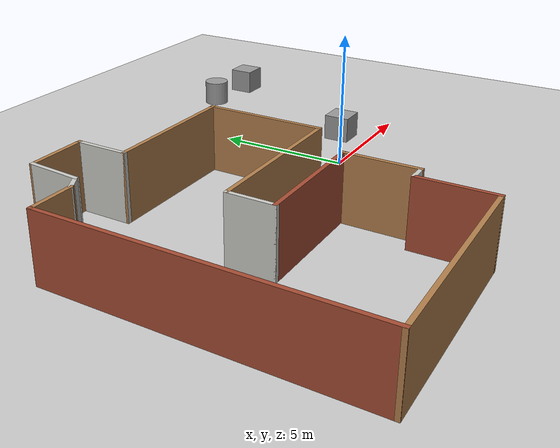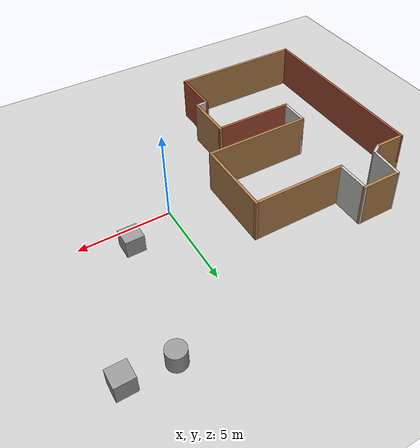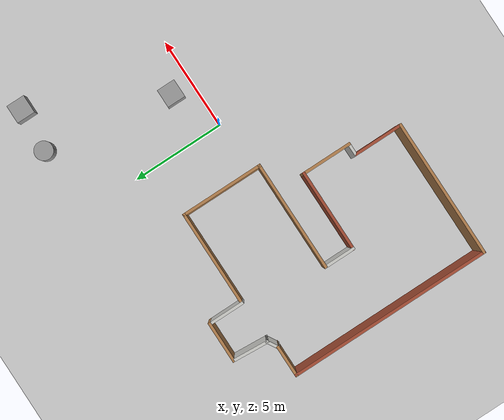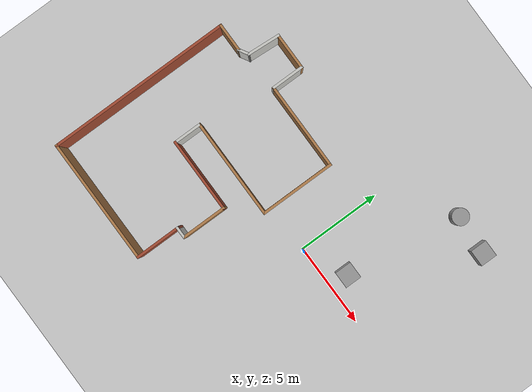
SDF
<sdf version='1.7'>
  <world name='default'>
    <light name='sun' type='directional'>
      <cast_shadows>1</cast_shadows>
      <pose>0 0 10 0 -0 0</pose>
      <diffuse>0.8 0.8 0.8 1</diffuse>
      <specular>0.2 0.2 0.2 1</specular>
      <attenuation>
        <range>1000</range>
        <constant>0.9</constant>
        <linear>0.01</linear>
        <quadratic>0.001</quadratic>
      </attenuation>
      <direction>-0.5 0.1 -0.9</direction>
      <spot>
        <inner_angle>0</inner_angle>
        <outer_angle>0</outer_angle>
        <falloff>0</falloff>
      </spot>
    </light>
    <model name='ground_plane'>
      <static>1</static>
      <link name='link'>
        <collision name='collision'>
          <geometry>
            <plane>
              <normal>0 0 1</normal>
              <size>100 100</size>
            </plane>
          </geometry>
          <surface>
            <friction>
              <ode>
                <mu>100</mu>
                <mu2>50</mu2>
              </ode>
              <torsional>
                <ode/>
              </torsional>
            </friction>
            <contact>
              <ode/>
            </contact>
            <bounce/>
          </surface>
          <max_contacts>10</max_contacts>
        </collision>
        <visual name='visual'>
          <cast_shadows>0</cast_shadows>
          <geometry>
            <plane>
              <normal>0 0 1</normal>
              <size>100 100</size>
            </plane>
          </geometry>
          <material>
            <script>
              <uri>file://media/materials/scripts/gazebo.material</uri>
              <name>Gazebo/Grey</name>
            </script>
          </material>
        </visual>
        <self_collide>0</self_collide>
        <enable_wind>0</enable_wind>
        <kinematic>0</kinematic>
      </link>
    </model>
    <gravity>0 0 -9.8</gravity>
    <magnetic_field>6e-06 2.3e-05 -4.2e-05</magnetic_field>
    <atmosphere type='adiabatic'/>
    <physics type='ode'>
      <max_step_size>0.001</max_step_size>
      <real_time_factor>1</real_time_factor>
      <real_time_update_rate>1000</real_time_update_rate>
    </physics>
    <scene>
      <ambient>0.4 0.4 0.4 1</ambient>
      <background>0.7 0.7 0.7 1</background>
      <shadows>1</shadows>
    </scene>
    <wind/>
    <spherical_coordinates>
      <surface_model>EARTH_WGS84</surface_model>
      <latitude_deg>0</latitude_deg>
      <longitude_deg>0</longitude_deg>
      <elevation>0</elevation>
      <heading_deg>0</heading_deg>
    </spherical_coordinates>
    <model name='Untitled_0'>
      <pose>-6.18772 -0.77899 0 0 -0 0</pose>
      <link name='Wall_10'>
        <collision name='Wall_10_Collision'>
          <geometry>
            <box>
              <size>7.5 0.15 2.5</size>
            </box>
          </geometry>
          <pose>0 0 1.25 0 -0 0</pose>
          <max_contacts>10</max_contacts>
          <surface>
            <contact>
              <ode/>
            </contact>
            <bounce/>
            <friction>
              <torsional>
                <ode/>
              </torsional>
              <ode/>
            </friction>
          </surface>
        </collision>
        <visual name='Wall_10_Visual'>
          <pose>0 0 1.25 0 -0 0</pose>
          <geometry>
            <box>
              <size>7.5 0.15 2.5</size>
            </box>
          </geometry>
          <material>
            <script>
              <uri>file://media/materials/scripts/gazebo.material</uri>
              <name>Gazebo/Wood</name>
            </script>
            <ambient>1 1 1 1</ambient>
          </material>
          <meta>
            <layer>0</layer>
          </meta>
        </visual>
        <pose>-2.43772 -6.50254 0 0 -0 0</pose>
        <self_collide>0</self_collide>
        <enable_wind>0</enable_wind>
        <kinematic>0</kinematic>
      </link>
      <link name='Wall_11'>
        <collision name='Wall_11_Collision'>
          <geometry>
            <box>
              <size>2.75 0.15 2.5</size>
            </box>
          </geometry>
          <pose>0 0 1.25 0 -0 0</pose>
          <max_contacts>10</max_contacts>
          <surface>
            <contact>
              <ode/>
            </contact>
            <bounce/>
            <friction>
              <torsional>
                <ode/>
              </torsional>
              <ode/>
            </friction>
          </surface>
        </collision>
        <visual name='Wall_11_Visual'>
          <pose>0 0 1.25 0 -0 0</pose>
          <geometry>
            <box>
              <size>2.75 0.15 2.5</size>
            </box>
          </geometry>
          <material>
            <script>
              <uri>file://media/materials/scripts/gazebo.material</uri>
              <name>Gazebo/Bricks</name>
            </script>
            <ambient>1 1 1 1</ambient>
          </material>
          <meta>
            <layer>0</layer>
          </meta>
        </visual>
        <pose>1.23728 -5.20254 0 0 -0 1.5708</pose>
        <self_collide>0</self_collide>
        <enable_wind>0</enable_wind>
        <kinematic>0</kinematic>
      </link>
      <link name='Wall_12'>
        <collision name='Wall_12_Collision'>
          <geometry>
            <box>
              <size>0.75 0.15 2.5</size>
            </box>
          </geometry>
          <pose>0 0 1.25 0 -0 0</pose>
          <max_contacts>10</max_contacts>
          <surface>
            <contact>
              <ode/>
            </contact>
            <bounce/>
            <friction>
              <torsional>
                <ode/>
              </torsional>
              <ode/>
            </friction>
          </surface>
        </collision>
        <visual name='Wall_12_Visual'>
          <pose>0 0 1.25 0 -0 0</pose>
          <geometry>
            <box>
              <size>0.75 0.15 2.5</size>
            </box>
          </geometry>
          <material>
            <script>
              <uri>file://media/materials/scripts/gazebo.material</uri>
              <name>Gazebo/CeilingTiled</name>
            </script>
            <ambient>0.921569 0.807843 0.615686 1</ambient>
          </material>
          <meta>
            <layer>0</layer>
          </meta>
        </visual>
        <pose>1.53728 -3.90254 0 0 -0 0</pose>
        <self_collide>0</self_collide>
        <enable_wind>0</enable_wind>
        <kinematic>0</kinematic>
      </link>
      <link name='Wall_13'>
        <collision name='Wall_13_Collision'>
          <geometry>
            <box>
              <size>2.75 0.15 2.5</size>
            </box>
          </geometry>
          <pose>0 0 1.25 0 -0 0</pose>
          <max_contacts>10</max_contacts>
          <surface>
            <contact>
              <ode/>
            </contact>
            <bounce/>
            <friction>
              <torsional>
                <ode/>
              </torsional>
              <ode/>
            </friction>
          </surface>
        </collision>
        <visual name='Wall_13_Visual'>
          <pose>0 0 1.25 0 -0 0</pose>
          <geometry>
            <box>
              <size>2.75 0.15 2.5</size>
            </box>
          </geometry>
          <material>
            <script>
              <uri>file://media/materials/scripts/gazebo.material</uri>
              <name>Gazebo/Wood</name>
            </script>
            <ambient>1 1 1 1</ambient>
          </material>
          <meta>
            <layer>0</layer>
          </meta>
        </visual>
        <pose>1.83728 -2.60254 0 0 -0 1.5708</pose>
        <self_collide>0</self_collide>
        <enable_wind>0</enable_wind>
        <kinematic>0</kinematic>
      </link>
      <link name='Wall_14'>
        <collision name='Wall_14_Collision'>
          <geometry>
            <box>
              <size>4.5 0.15 2.5</size>
            </box>
          </geometry>
          <pose>0 0 1.25 0 -0 0</pose>
          <max_contacts>10</max_contacts>
          <surface>
            <contact>
              <ode/>
            </contact>
            <bounce/>
            <friction>
              <torsional>
                <ode/>
              </torsional>
              <ode/>
            </friction>
          </surface>
        </collision>
        <visual name='Wall_14_Visual'>
          <pose>0 0 1.25 0 -0 0</pose>
          <geometry>
            <box>
              <size>4.5 0.15 2.5</size>
            </box>
          </geometry>
          <material>
            <script>
              <uri>file://media/materials/scripts/gazebo.material</uri>
              <name>Gazebo/Bricks</name>
            </script>
            <ambient>1 1 1 1</ambient>
          </material>
          <meta>
            <layer>0</layer>
          </meta>
        </visual>
        <pose>-0.337716 -1.30254 0 0 -0 3.14159</pose>
        <self_collide>0</self_collide>
        <enable_wind>0</enable_wind>
        <kinematic>0</kinematic>
      </link>
      <link name='Wall_15'>
        <collision name='Wall_15_Collision'>
          <geometry>
            <box>
              <size>1.75 0.15 2.5</size>
            </box>
          </geometry>
          <pose>0 0 1.25 0 -0 0</pose>
          <max_contacts>10</max_contacts>
          <surface>
            <contact>
              <ode/>
            </contact>
            <bounce/>
            <friction>
              <torsional>
                <ode/>
              </torsional>
              <ode/>
            </friction>
          </surface>
        </collision>
        <visual name='Wall_15_Visual'>
          <pose>0 0 1.25 0 -0 0</pose>
          <geometry>
            <box>
              <size>1.75 0.15 2.5</size>
            </box>
          </geometry>
          <material>
            <script>
              <uri>file://media/materials/scripts/gazebo.material</uri>
              <name>Gazebo/CeilingTiled</name>
            </script>
            <ambient>0.921569 0.807843 0.615686 1</ambient>
          </material>
          <meta>
            <layer>0</layer>
          </meta>
        </visual>
        <pose>-2.51272 -0.502543 0 0 -0 1.5708</pose>
        <self_collide>0</self_collide>
        <enable_wind>0</enable_wind>
        <kinematic>0</kinematic>
      </link>
      <link name='Wall_16'>
        <collision name='Wall_16_Collision'>
          <geometry>
            <box>
              <size>6 0.15 2.5</size>
            </box>
          </geometry>
          <pose>0 0 1.25 0 -0 0</pose>
          <max_contacts>10</max_contacts>
          <surface>
            <contact>
              <ode/>
            </contact>
            <bounce/>
            <friction>
              <torsional>
                <ode/>
              </torsional>
              <ode/>
            </friction>
          </surface>
        </collision>
        <visual name='Wall_16_Visual'>
          <pose>0 0 1.25 0 -0 0</pose>
          <geometry>
            <box>
              <size>6 0.15 2.5</size>
            </box>
          </geometry>
          <material>
            <script>
              <uri>file://media/materials/scripts/gazebo.material</uri>
              <name>Gazebo/Wood</name>
            </script>
            <ambient>1 1 1 1</ambient>
          </material>
          <meta>
            <layer>0</layer>
          </meta>
        </visual>
        <pose>0.412284 0.297457 0 0 -0 0</pose>
        <self_collide>0</self_collide>
        <enable_wind>0</enable_wind>
        <kinematic>0</kinematic>
      </link>
      <link name='Wall_17'>
        <collision name='Wall_17_Collision'>
          <geometry>
            <box>
              <size>4.5 0.15 2.5</size>
            </box>
          </geometry>
          <pose>0 0 1.25 0 -0 0</pose>
          <max_contacts>10</max_contacts>
          <surface>
            <contact>
              <ode/>
            </contact>
            <bounce/>
            <friction>
              <torsional>
                <ode/>
              </torsional>
              <ode/>
            </friction>
          </surface>
        </collision>
        <visual name='Wall_17_Visual'>
          <pose>0 0 1.25 0 -0 0</pose>
          <geometry>
            <box>
              <size>4.5 0.15 2.5</size>
            </box>
          </geometry>
          <material>
            <script>
              <uri>file://media/materials/scripts/gazebo.material</uri>
              <name>Gazebo/Wood</name>
            </script>
            <ambient>1 1 1 1</ambient>
          </material>
          <meta>
            <layer>0</layer>
          </meta>
        </visual>
        <pose>3.33728 2.47246 0 0 -0 1.5708</pose>
        <self_collide>0</self_collide>
        <enable_wind>0</enable_wind>
        <kinematic>0</kinematic>
      </link>
      <link name='Wall_18'>
        <collision name='Wall_18_Collision'>
          <geometry>
            <box>
              <size>5.25 0.15 2.5</size>
            </box>
          </geometry>
          <pose>0 0 1.25 0 -0 0</pose>
          <max_contacts>10</max_contacts>
          <surface>
            <contact>
              <ode/>
            </contact>
            <bounce/>
            <friction>
              <torsional>
                <ode/>
              </torsional>
              <ode/>
            </friction>
          </surface>
        </collision>
        <visual name='Wall_18_Visual'>
          <pose>0 0 1.25 0 -0 0</pose>
          <geometry>
            <box>
              <size>5.25 0.15 2.5</size>
            </box>
          </geometry>
          <material>
            <script>
              <uri>file://media/materials/scripts/gazebo.material</uri>
              <name>Gazebo/Wood</name>
            </script>
            <ambient>1 1 1 1</ambient>
          </material>
          <meta>
            <layer>0</layer>
          </meta>
        </visual>
        <pose>0.787284 4.64746 0 0 -0 3.14159</pose>
        <self_collide>0</self_collide>
        <enable_wind>0</enable_wind>
        <kinematic>0</kinematic>
      </link>
      <link name='Wall_19'>
        <collision name='Wall_19_Collision'>
          <geometry>
            <box>
              <size>2 0.15 2.5</size>
            </box>
          </geometry>
          <pose>0 0 1.25 0 -0 0</pose>
          <max_contacts>10</max_contacts>
          <surface>
            <contact>
              <ode/>
            </contact>
            <bounce/>
            <friction>
              <torsional>
                <ode/>
              </torsional>
              <ode/>
            </friction>
          </surface>
        </collision>
        <visual name='Wall_19_Visual'>
          <pose>0 0 1.25 0 -0 0</pose>
          <geometry>
            <box>
              <size>2 0.15 2.5</size>
            </box>
          </geometry>
          <material>
            <script>
              <uri>file://media/materials/scripts/gazebo.material</uri>
              <name>Gazebo/CeilingTiled</name>
            </script>
            <ambient>0.921569 0.807843 0.615686 1</ambient>
          </material>
          <meta>
            <layer>0</layer>
          </meta>
        </visual>
        <pose>-1.76272 5.57246 0 0 -0 1.5708</pose>
        <self_collide>0</self_collide>
        <enable_wind>0</enable_wind>
        <kinematic>0</kinematic>
      </link>
      <link name='Wall_20'>
        <collision name='Wall_20_Collision'>
          <geometry>
            <box>
              <size>2.25 0.15 2.5</size>
            </box>
          </geometry>
          <pose>0 0 1.25 0 -0 0</pose>
          <max_contacts>10</max_contacts>
          <surface>
            <contact>
              <ode/>
            </contact>
            <bounce/>
            <friction>
              <torsional>
                <ode/>
              </torsional>
              <ode/>
            </friction>
          </surface>
        </collision>
        <visual name='Wall_20_Visual'>
          <pose>0 0 1.25 0 -0 0</pose>
          <geometry>
            <box>
              <size>2.25 0.15 2.5</size>
            </box>
          </geometry>
          <material>
            <script>
              <uri>file://media/materials/scripts/gazebo.material</uri>
              <name>Gazebo/Wood</name>
            </script>
            <ambient>1 1 1 1</ambient>
          </material>
          <meta>
            <layer>0</layer>
          </meta>
        </visual>
        <pose>-2.81272 6.49746 0 0 -0 3.14159</pose>
        <self_collide>0</self_collide>
        <enable_wind>0</enable_wind>
        <kinematic>0</kinematic>
      </link>
      <link name='Wall_21'>
        <collision name='Wall_21_Collision'>
          <geometry>
            <box>
              <size>2.00459 0.15 2.5</size>
            </box>
          </geometry>
          <pose>0 0 1.25 0 -0 0</pose>
          <max_contacts>10</max_contacts>
          <surface>
            <contact>
              <ode/>
            </contact>
            <bounce/>
            <friction>
              <torsional>
                <ode/>
              </torsional>
              <ode/>
            </friction>
          </surface>
        </collision>
        <visual name='Wall_21_Visual'>
          <pose>0 0 1.25 0 -0 0</pose>
          <geometry>
            <box>
              <size>2.00459 0.15 2.5</size>
            </box>
          </geometry>
          <material>
            <script>
              <uri>file://media/materials/scripts/gazebo.material</uri>
              <name>Gazebo/CeilingTiled</name>
            </script>
            <ambient>0.921569 0.807843 0.615686 1</ambient>
          </material>
          <meta>
            <layer>0</layer>
          </meta>
        </visual>
        <pose>-3.92791 5.57246 0 0 -0 -1.64116</pose>
        <self_collide>0</self_collide>
        <enable_wind>0</enable_wind>
        <kinematic>0</kinematic>
      </link>
      <link name='Wall_6'>
        <collision name='Wall_6_Collision'>
          <geometry>
            <box>
              <size>11 0.15 2.5</size>
            </box>
          </geometry>
          <pose>0 0 1.25 0 -0 0</pose>
          <max_contacts>10</max_contacts>
          <surface>
            <contact>
              <ode/>
            </contact>
            <bounce/>
            <friction>
              <torsional>
                <ode/>
              </torsional>
              <ode/>
            </friction>
          </surface>
        </collision>
        <visual name='Wall_6_Visual'>
          <pose>0 0 1.25 0 -0 0</pose>
          <geometry>
            <box>
              <size>11 0.15 2.5</size>
            </box>
          </geometry>
          <material>
            <script>
              <uri>file://media/materials/scripts/gazebo.material</uri>
              <name>Gazebo/Bricks</name>
            </script>
            <ambient>1 1 1 1</ambient>
          </material>
          <meta>
            <layer>0</layer>
          </meta>
        </visual>
        <pose>-6.11272 -1.07754 0 0 -0 1.5708</pose>
        <self_collide>0</self_collide>
        <enable_wind>0</enable_wind>
        <kinematic>0</kinematic>
      </link>
      <link name='Wall_7'>
        <collision name='Wall_7_Collision'>
          <geometry>
            <box>
              <size>1.75 0.15 2.5</size>
            </box>
          </geometry>
          <pose>0 0 1.25 0 -0 0</pose>
          <max_contacts>10</max_contacts>
          <surface>
            <contact>
              <ode/>
            </contact>
            <bounce/>
            <friction>
              <torsional>
                <ode/>
              </torsional>
              <ode/>
            </friction>
          </surface>
        </collision>
        <visual name='Wall_7_Visual'>
          <pose>0 0 1.25 0 -0 0</pose>
          <geometry>
            <box>
              <size>1.75 0.15 2.5</size>
            </box>
          </geometry>
          <material>
            <script>
              <uri>file://media/materials/scripts/gazebo.material</uri>
              <name>Gazebo/Wood</name>
            </script>
            <ambient>1 1 1 1</ambient>
          </material>
          <meta>
            <layer>0</layer>
          </meta>
        </visual>
        <pose>-5.31272 4.34746 0 0 -0 0</pose>
        <self_collide>0</self_collide>
        <enable_wind>0</enable_wind>
        <kinematic>0</kinematic>
      </link>
      <link name='Wall_8'>
        <collision name='Wall_8_Collision'>
          <geometry>
            <box>
              <size>0.75 0.15 2.5</size>
            </box>
          </geometry>
          <pose>0 0 1.25 0 -0 0</pose>
          <max_contacts>10</max_contacts>
          <surface>
            <contact>
              <ode/>
            </contact>
            <bounce/>
            <friction>
              <torsional>
                <ode/>
              </torsional>
              <ode/>
            </friction>
          </surface>
        </collision>
        <visual name='Wall_8_Visual'>
          <pose>0 0 1.25 0 -0 0</pose>
          <geometry>
            <box>
              <size>0.75 0.15 2.5</size>
            </box>
          </geometry>
          <material>
            <script>
              <uri>file://media/materials/scripts/gazebo.material</uri>
              <name>Gazebo/CeilingTiled</name>
            </script>
            <ambient>0.921569 0.807843 0.615686 1</ambient>
          </material>
          <meta>
            <layer>0</layer>
          </meta>
        </visual>
        <pose>-4.25291 4.49746 0 0 -0 0.523599</pose>
        <self_collide>0</self_collide>
        <enable_wind>0</enable_wind>
        <kinematic>0</kinematic>
      </link>
      <static>1</static>
    </model>
    <model name='unit_box'>
      <pose>2.59461 1.17635 0.5 0 -0 0</pose>
      <link name='link'>
        <inertial>
          <mass>1</mass>
          <inertia>
            <ixx>0.166667</ixx>
            <ixy>0</ixy>
            <ixz>0</ixz>
            <iyy>0.166667</iyy>
            <iyz>0</iyz>
            <izz>0.166667</izz>
          </inertia>
          <pose>0 0 0 0 -0 0</pose>
        </inertial>
        <collision name='collision'>
          <geometry>
            <box>
              <size>1 1 1</size>
            </box>
          </geometry>
          <max_contacts>10</max_contacts>
          <surface>
            <contact>
              <ode/>
            </contact>
            <bounce/>
            <friction>
              <torsional>
                <ode/>
              </torsional>
              <ode/>
            </friction>
          </surface>
        </collision>
        <visual name='visual'>
          <geometry>
            <box>
              <size>1 1 1</size>
            </box>
          </geometry>
          <material>
            <script>
              <name>Gazebo/Grey</name>
              <uri>file://media/materials/scripts/gazebo.material</uri>
            </script>
          </material>
        </visual>
        <self_collide>0</self_collide>
        <enable_wind>0</enable_wind>
        <kinematic>0</kinematic>
      </link>
    </model>
    <model name='unit_cylinder'>
      <pose>3.66982 8.02008 0.5 0 -0 0</pose>
      <link name='link'>
        <inertial>
          <mass>1</mass>
          <inertia>
            <ixx>0.145833</ixx>
            <ixy>0</ixy>
            <ixz>0</ixz>
            <iyy>0.145833</iyy>
            <iyz>0</iyz>
            <izz>0.125</izz>
          </inertia>
          <pose>0 0 0 0 -0 0</pose>
        </inertial>
        <collision name='collision'>
          <geometry>
            <cylinder>
              <radius>0.5</radius>
              <length>1</length>
            </cylinder>
          </geometry>
          <max_contacts>10</max_contacts>
          <surface>
            <contact>
              <ode/>
            </contact>
            <bounce/>
            <friction>
              <torsional>
                <ode/>
              </torsional>
              <ode/>
            </friction>
          </surface>
        </collision>
        <visual name='visual'>
          <geometry>
            <cylinder>
              <radius>0.5</radius>
              <length>1</length>
            </cylinder>
          </geometry>
          <material>
            <script>
              <name>Gazebo/Grey</name>
              <uri>file://media/materials/scripts/gazebo.material</uri>
            </script>
          </material>
        </visual>
        <self_collide>0</self_collide>
        <enable_wind>0</enable_wind>
        <kinematic>0</kinematic>
      </link>
    </model>
    <model name='unit_box_0'>
      <pose>6.02233 7.8534 0.5 0 -0 0</pose>
      <link name='link'>
        <inertial>
          <mass>1</mass>
          <inertia>
            <ixx>0.166667</ixx>
            <ixy>0</ixy>
            <ixz>0</ixz>
            <iyy>0.166667</iyy>
            <iyz>0</iyz>
            <izz>0.166667</izz>
          </inertia>
          <pose>0 0 0 0 -0 0</pose>
        </inertial>
        <collision name='collision'>
          <geometry>
            <box>
              <size>1 1 1</size>
            </box>
          </geometry>
          <max_contacts>10</max_contacts>
          <surface>
            <contact>
              <ode/>
            </contact>
            <bounce/>
            <friction>
              <torsional>
                <ode/>
              </torsional>
              <ode/>
            </friction>
          </surface>
        </collision>
        <visual name='visual'>
          <geometry>
            <box>
              <size>1 1 1</size>
            </box>
          </geometry>
          <material>
            <script>
              <name>Gazebo/Grey</name>
              <uri>file://media/materials/scripts/gazebo.material</uri>
            </script>
          </material>
        </visual>
        <self_collide>0</self_collide>
        <enable_wind>0</enable_wind>
        <kinematic>0</kinematic>
      </link>
    </model>
    <gui fullscreen='0'>
      <camera name='user_camera'>
        <pose>0.784744 4.87606 30.4766 0 1.5138 1.36498</pose>
        <view_controller>orbit</view_controller>
        <projection_type>perspective</projection_type>
      </camera>
    </gui>
  </world>
</sdf>
